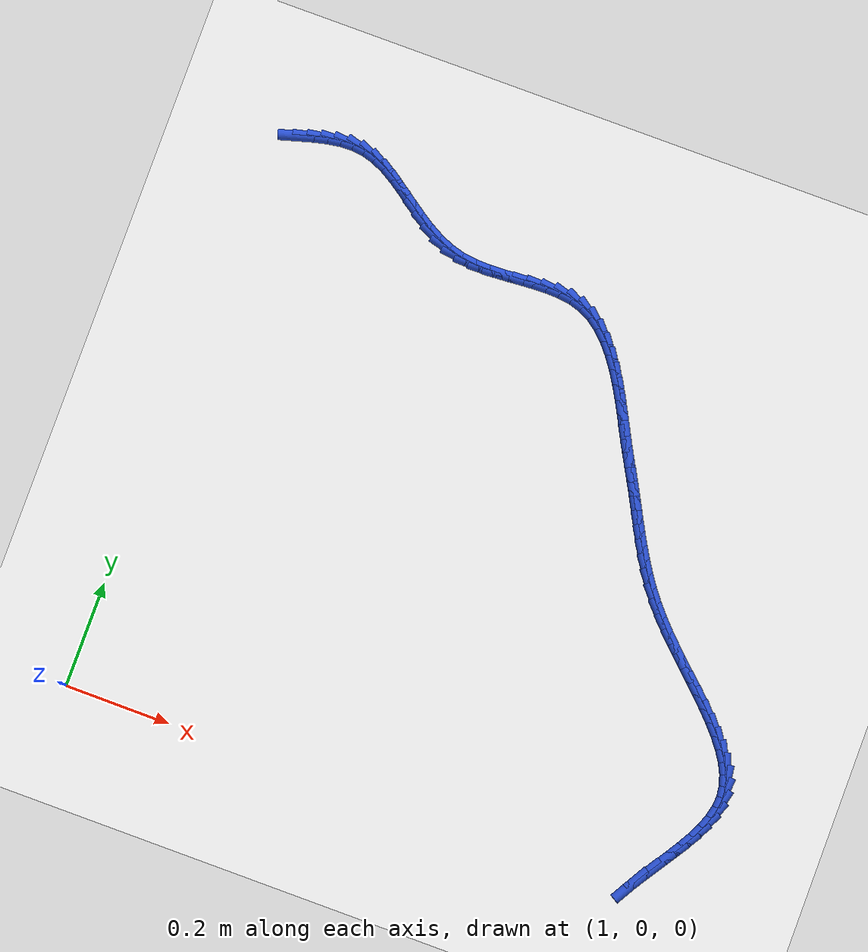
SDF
<sdf version="1.6">
 <world name="default">
  <model name="ground_plane">
   <static>1</static>
   <link name="link">
    <collision name="collision">
     <geometry><plane><normal>0 0 1</normal><size>100 100</size></plane></geometry>
     <surface><friction><ode><mu>100</mu><mu2>50</mu2></ode></friction></surface>
    </collision>
    <visual name="visual">
     <cast_shadows>0</cast_shadows>
     <geometry><plane><normal>0 0 1</normal><size>100 100</size></plane></geometry>
     <material>
      <script><uri>file://media/materials/scripts/gazebo.material</uri><name>Gazebo/WhiteGlow</name></script>
     </material>
    </visual>
   </link>
  </model>
  <model name="line">
   <link name="link_65">
    <pose>1.0493771125271925 1.097898541382541 0.01 0 1.57 0.2775353731377268</pose>
    <collision name="collision">
     <geometry><cylinder><radius>0.01</radius><length>0.08</length></cylinder></geometry>
    </collision>
    <visual name="visual">
     <material>
      <script><name>Gazebo/Blue</name><uri>file://media/materials/scripts/gazebo.material</uri></script>
     </material>
     <geometry><cylinder><radius>0.01</radius><length>0.08</length></cylinder></geometry>
    </visual>
   </link>
   <link name="link_66">
    <pose>1.075320546081236 1.105289508819345 0.01 0 1.57 0.2269328008418897</pose>
    <collision name="collision">
     <geometry><cylinder><radius>0.01</radius><length>0.08</length></cylinder></geometry>
    </collision>
    <visual name="visual">
     <material>
      <script><name>Gazebo/Blue</name><uri>file://media/materials/scripts/gazebo.material</uri></script>
     </material>
     <geometry><cylinder><radius>0.01</radius><length>0.08</length></cylinder></geometry>
    </visual>
   </link>
   <link name="link_67">
    <pose>1.1006045718138247 1.1111278513300695 0.01 0 1.57 0.1471510101023588</pose>
    <collision name="collision">
     <geometry><cylinder><radius>0.01</radius><length>0.08</length></cylinder></geometry>
    </collision>
    <visual name="visual">
     <material>
      <script><name>Gazebo/Blue</name><uri>file://media/materials/scripts/gazebo.material</uri></script>
     </material>
     <geometry><cylinder><radius>0.01</radius><length>0.08</length></cylinder></geometry>
    </visual>
   </link>
   <link name="link_68">
    <pose>1.1252671494787498 1.1147833977392805 0.01 0 1.57 0.034977879502217556</pose>
    <collision name="collision">
     <geometry><cylinder><radius>0.01</radius><length>0.08</length></cylinder></geometry>
    </collision>
    <visual name="visual">
     <material>
      <script><name>Gazebo/Blue</name><uri>file://media/materials/scripts/gazebo.material</uri></script>
     </material>
     <geometry><cylinder><radius>0.01</radius><length>0.08</length></cylinder></geometry>
    </visual>
   </link>
   <link name="link_69">
    <pose>1.1493462388298028 1.1156259768715449 0.01 0 1.57 -0.11005775600568005</pose>
    <collision name="collision">
     <geometry><cylinder><radius>0.01</radius><length>0.08</length></cylinder></geometry>
    </collision>
    <visual name="visual">
     <material>
      <script><name>Gazebo/Blue</name><uri>file://media/materials/scripts/gazebo.material</uri></script>
     </material>
     <geometry><cylinder><radius>0.01</radius><length>0.08</length></cylinder></geometry>
    </visual>
   </link>
   <link name="link_70">
    <pose>1.1728797996207747 1.1130254175514291 0.01 0 1.57 -0.27997357270882256</pose>
    <collision name="collision">
     <geometry><cylinder><radius>0.01</radius><length>0.08</length></cylinder></geometry>
    </collision>
    <visual name="visual">
     <material>
      <script><name>Gazebo/Blue</name><uri>file://media/materials/scripts/gazebo.material</uri></script>
     </material>
     <geometry><cylinder><radius>0.01</radius><length>0.08</length></cylinder></geometry>
    </visual>
   </link>
   <link name="link_71">
    <pose>1.1959105733230002 1.1064034779111185 0.01 0 1.57 -0.4302138245966116</pose>
    <collision name="collision">
     <geometry><cylinder><radius>0.01</radius><length>0.08</length></cylinder></geometry>
    </collision>
    <visual name="visual">
     <material>
      <script><name>Gazebo/Blue</name><uri>file://media/materials/scripts/gazebo.material</uri></script>
     </material>
     <geometry><cylinder><radius>0.01</radius><length>0.08</length></cylinder></geometry>
    </visual>
   </link>
   <link name="link_72">
    <pose>1.218557661602768 1.096011185486182 0.01 0 1.57 -0.5331513210577749</pose>
    <collision name="collision">
     <geometry><cylinder><radius>0.01</radius><length>0.08</length></cylinder></geometry>
    </collision>
    <visual name="visual">
     <material>
      <script><name>Gazebo/Blue</name><uri>file://media/materials/scripts/gazebo.material</uri></script>
     </material>
     <geometry><cylinder><radius>0.01</radius><length>0.08</length></cylinder></geometry>
    </visual>
   </link>
   <link name="link_73">
    <pose>1.2410015106871914 1.0827657678838842 0.01 0 1.57 -0.5945797289183539</pose>
    <collision name="collision">
     <geometry><cylinder><radius>0.01</radius><length>0.08</length></cylinder></geometry>
    </collision>
    <visual name="visual">
     <material>
      <script><name>Gazebo/Blue</name><uri>file://media/materials/scripts/gazebo.material</uri></script>
     </material>
     <geometry><cylinder><radius>0.01</radius><length>0.08</length></cylinder></geometry>
    </visual>
   </link>
   <link name="link_74">
    <pose>1.2634243001894285 1.0676032772314312 0.01 0 1.57 -0.620605564729072</pose>
    <collision name="collision">
     <geometry><cylinder><radius>0.01</radius><length>0.08</length></cylinder></geometry>
    </collision>
    <visual name="visual">
     <material>
      <script><name>Gazebo/Blue</name><uri>file://media/materials/scripts/gazebo.material</uri></script>
     </material>
     <geometry><cylinder><radius>0.01</radius><length>0.08</length></cylinder></geometry>
    </visual>
   </link>
   <link name="link_75">
    <pose>1.2860082097226389 1.0514597656560314 0.01 0 1.57 -0.6147959192971442</pose>
    <collision name="collision">
     <geometry><cylinder><radius>0.01</radius><length>0.08</length></cylinder></geometry>
    </collision>
    <visual name="visual">
     <material>
      <script><name>Gazebo/Blue</name><uri>file://media/materials/scripts/gazebo.material</uri></script>
     </material>
     <geometry><cylinder><radius>0.01</radius><length>0.08</length></cylinder></geometry>
    </visual>
   </link>
   <link name="link_76">
    <pose>1.308935418899981 1.0352712852848913 0.01 0 1.57 -0.5779667141186224</pose>
    <collision name="collision">
     <geometry><cylinder><radius>0.01</radius><length>0.08</length></cylinder></geometry>
    </collision>
    <visual name="visual">
     <material>
      <script><name>Gazebo/Blue</name><uri>file://media/materials/scripts/gazebo.material</uri></script>
     </material>
     <geometry><cylinder><radius>0.01</radius><length>0.08</length></cylinder></geometry>
    </visual>
   </link>
   <link name="link_77">
    <pose>1.3323881073346138 1.019973888245218 0.01 0 1.57 -0.5086105331560083</pose>
    <collision name="collision">
     <geometry><cylinder><radius>0.01</radius><length>0.08</length></cylinder></geometry>
    </collision>
    <visual name="visual">
     <material>
      <script><name>Gazebo/Blue</name><uri>file://media/materials/scripts/gazebo.material</uri></script>
     </material>
     <geometry><cylinder><radius>0.01</radius><length>0.08</length></cylinder></geometry>
    </visual>
   </link>
   <link name="link_78">
    <pose>1.3565484546396964 1.006503626664219 0.01 0 1.57 -0.4039227936931797</pose>
    <collision name="collision">
     <geometry><cylinder><radius>0.01</radius><length>0.08</length></cylinder></geometry>
    </collision>
    <visual name="visual">
     <material>
      <script><name>Gazebo/Blue</name><uri>file://media/materials/scripts/gazebo.material</uri></script>
     </material>
     <geometry><cylinder><radius>0.01</radius><length>0.08</length></cylinder></geometry>
    </visual>
   </link>
   <link name="link_79">
    <pose>1.3815986404283878 0.9957965526691019 0.01 0 1.57 -0.26442928315448877</pose>
    <collision name="collision">
     <geometry><cylinder><radius>0.01</radius><length>0.08</length></cylinder></geometry>
    </collision>
    <visual name="visual">
     <material>
      <script><name>Gazebo/Blue</name><uri>file://media/materials/scripts/gazebo.material</uri></script>
     </material>
     <geometry><cylinder><radius>0.01</radius><length>0.08</length></cylinder></geometry>
    </visual>
   </link>
   <link name="link_80">
    <pose>1.407704253547178 0.9887279384162144 0.01 0 1.57 -0.12939909151889062</pose>
    <collision name="collision">
     <geometry><cylinder><radius>0.01</radius><length>0.08</length></cylinder></geometry>
    </collision>
    <visual name="visual">
     <material>
      <script><name>Gazebo/Blue</name><uri>file://media/materials/scripts/gazebo.material</uri></script>
     </material>
     <geometry><cylinder><radius>0.01</radius><length>0.08</length></cylinder></geometry>
    </visual>
   </link>
   <link name="link_81">
    <pose>1.43476701063288 0.98520636503817 0.01 0 1.57 -0.030323236224047437</pose>
    <collision name="collision">
     <geometry><cylinder><radius>0.01</radius><length>0.08</length></cylinder></geometry>
    </collision>
    <visual name="visual">
     <material>
      <script><name>Gazebo/Blue</name><uri>file://media/materials/scripts/gazebo.material</uri></script>
     </material>
     <geometry><cylinder><radius>0.01</radius><length>0.08</length></cylinder></geometry>
    </visual>
   </link>
   <link name="link_82">
    <pose>1.4624771986239995 0.9843658448270413 0.01 0 1.57 0.03396394064905525</pose>
    <collision name="collision">
     <geometry><cylinder><radius>0.01</radius><length>0.08</length></cylinder></geometry>
    </collision>
    <visual name="visual">
     <material>
      <script><name>Gazebo/Blue</name><uri>file://media/materials/scripts/gazebo.material</uri></script>
     </material>
     <geometry><cylinder><radius>0.01</radius><length>0.08</length></cylinder></geometry>
    </visual>
   </link>
   <link name="link_83">
    <pose>1.4905191638764683 0.9853186268590738 0.01 0 1.57 0.06613505344259576</pose>
    <collision name="collision">
     <geometry><cylinder><radius>0.01</radius><length>0.08</length></cylinder></geometry>
    </collision>
    <visual name="visual">
     <material>
      <script><name>Gazebo/Blue</name><uri>file://media/materials/scripts/gazebo.material</uri></script>
     </material>
     <geometry><cylinder><radius>0.01</radius><length>0.08</length></cylinder></geometry>
    </visual>
   </link>
   <link name="link_84">
    <pose>1.518577252746221 0.9871769602105155 0.01 0 1.57 0.0674849434901481</pose>
    <collision name="collision">
     <geometry><cylinder><radius>0.01</radius><length>0.08</length></cylinder></geometry>
    </collision>
    <visual name="visual">
     <material>
      <script><name>Gazebo/Blue</name><uri>file://media/materials/scripts/gazebo.material</uri></script>
     </material>
     <geometry><cylinder><radius>0.01</radius><length>0.08</length></cylinder></geometry>
    </visual>
   </link>
   <link name="link_85">
    <pose>1.5463358115891888 0.989053093957612 0.01 0 1.57 0.037052235330977436</pose>
    <collision name="collision">
     <geometry><cylinder><radius>0.01</radius><length>0.08</length></cylinder></geometry>
    </collision>
    <visual name="visual">
     <material>
      <script><name>Gazebo/Blue</name><uri>file://media/materials/scripts/gazebo.material</uri></script>
     </material>
     <geometry><cylinder><radius>0.01</radius><length>0.08</length></cylinder></geometry>
    </visual>
   </link>
   <link name="link_86">
    <pose>1.573479186761305 0.9900592771766102 0.01 0 1.57 -0.02866233050834766</pose>
    <collision name="collision">
     <geometry><cylinder><radius>0.01</radius><length>0.08</length></cylinder></geometry>
    </collision>
    <visual name="visual">
     <material>
      <script><name>Gazebo/Blue</name><uri>file://media/materials/scripts/gazebo.material</uri></script>
     </material>
     <geometry><cylinder><radius>0.01</radius><length>0.08</length></cylinder></geometry>
    </visual>
   </link>
   <link name="link_87">
    <pose>1.5996917246185023 0.9893077589437574 0.01 0 1.57 -0.13523315846179806</pose>
    <collision name="collision">
     <geometry><cylinder><radius>0.01</radius><length>0.08</length></cylinder></geometry>
    </collision>
    <visual name="visual">
     <material>
      <script><name>Gazebo/Blue</name><uri>file://media/materials/scripts/gazebo.material</uri></script>
     </material>
     <geometry><cylinder><radius>0.01</radius><length>0.08</length></cylinder></geometry>
    </visual>
   </link>
   <link name="link_88">
    <pose>1.624657771516713 0.9859107883352992 0.01 0 1.57 -0.2878669561494022</pose>
    <collision name="collision">
     <geometry><cylinder><radius>0.01</radius><length>0.08</length></cylinder></geometry>
    </collision>
    <visual name="visual">
     <material>
      <script><name>Gazebo/Blue</name><uri>file://media/materials/scripts/gazebo.material</uri></script>
     </material>
     <geometry><cylinder><radius>0.01</radius><length>0.08</length></cylinder></geometry>
    </visual>
   </link>
   <link name="link_89">
    <pose>1.6480618248279584 0.9789810524919115 0.01 0 1.57 -0.4708287167649854</pose>
    <collision name="collision">
     <geometry><cylinder><radius>0.01</radius><length>0.08</length></cylinder></geometry>
    </collision>
    <visual name="visual">
     <material>
      <script><name>Gazebo/Blue</name><uri>file://media/materials/scripts/gazebo.material</uri></script>
     </material>
     <geometry><cylinder><radius>0.01</radius><length>0.08</length></cylinder></geometry>
    </visual>
   </link>
   <link name="link_90">
    <pose>1.6697035225113004 0.9679652360531033 0.01 0 1.57 -0.6347008481589415</pose>
    <collision name="collision">
     <geometry><cylinder><radius>0.01</radius><length>0.08</length></cylinder></geometry>
    </collision>
    <visual name="visual">
     <material>
      <script><name>Gazebo/Blue</name><uri>file://media/materials/scripts/gazebo.material</uri></script>
     </material>
     <geometry><cylinder><radius>0.01</radius><length>0.08</length></cylinder></geometry>
    </visual>
   </link>
   <link name="link_91">
    <pose>1.68970275707687 0.9532390116181761 0.01 0 1.57 -0.7680757467953654</pose>
    <collision name="collision">
     <geometry><cylinder><radius>0.01</radius><length>0.08</length></cylinder></geometry>
    </collision>
    <visual name="visual">
     <material>
      <script><name>Gazebo/Blue</name><uri>file://media/materials/scripts/gazebo.material</uri></script>
     </material>
     <geometry><cylinder><radius>0.01</radius><length>0.08</length></cylinder></geometry>
    </visual>
   </link>
   <link name="link_92">
    <pose>1.7082346562117885 0.9353382768767866 0.01 0 1.57 -0.8725180019685614</pose>
    <collision name="collision">
     <geometry><cylinder><radius>0.01</radius><length>0.08</length></cylinder></geometry>
    </collision>
    <visual name="visual">
     <material>
      <script><name>Gazebo/Blue</name><uri>file://media/materials/scripts/gazebo.material</uri></script>
     </material>
     <geometry><cylinder><radius>0.01</radius><length>0.08</length></cylinder></geometry>
    </visual>
   </link>
   <link name="link_93">
    <pose>1.725474347603176 0.9147989295185921 0.01 0 1.57 -0.9520191151585166</pose>
    <collision name="collision">
     <geometry><cylinder><radius>0.01</radius><length>0.08</length></cylinder></geometry>
    </collision>
    <visual name="visual">
     <material>
      <script><name>Gazebo/Blue</name><uri>file://media/materials/scripts/gazebo.material</uri></script>
     </material>
     <geometry><cylinder><radius>0.01</radius><length>0.08</length></cylinder></geometry>
    </visual>
   </link>
   <link name="link_94">
    <pose>1.7415969589381548 0.8921568672332503 0.01 0 1.57 -1.0107099491840401</pose>
    <collision name="collision">
     <geometry><cylinder><radius>0.01</radius><length>0.08</length></cylinder></geometry>
    </collision>
    <visual name="visual">
     <material>
      <script><name>Gazebo/Blue</name><uri>file://media/materials/scripts/gazebo.material</uri></script>
     </material>
     <geometry><cylinder><radius>0.01</radius><length>0.08</length></cylinder></geometry>
    </visual>
   </link>
   <link name="link_95">
    <pose>1.756777617903846 0.8679479877104184 0.01 0 1.57 -1.0519163127087237</pose>
    <collision name="collision">
     <geometry><cylinder><radius>0.01</radius><length>0.08</length></cylinder></geometry>
    </collision>
    <visual name="visual">
     <material>
      <script><name>Gazebo/Blue</name><uri>file://media/materials/scripts/gazebo.material</uri></script>
     </material>
     <geometry><cylinder><radius>0.01</radius><length>0.08</length></cylinder></geometry>
    </visual>
   </link>
   <link name="link_96">
    <pose>1.7711914521873704 0.8427081886397536 0.01 0 1.57 -1.0779121188129221</pose>
    <collision name="collision">
     <geometry><cylinder><radius>0.01</radius><length>0.08</length></cylinder></geometry>
    </collision>
    <visual name="visual">
     <material>
      <script><name>Gazebo/Blue</name><uri>file://media/materials/scripts/gazebo.material</uri></script>
     </material>
     <geometry><cylinder><radius>0.01</radius><length>0.08</length></cylinder></geometry>
    </visual>
   </link>
   <link name="link_97">
    <pose>1.7850135894758492 0.8169733677109132 0.01 0 1.57 -1.0899080857616035</pose>
    <collision name="collision">
     <geometry><cylinder><radius>0.01</radius><length>0.08</length></cylinder></geometry>
    </collision>
    <visual name="visual">
     <material>
      <script><name>Gazebo/Blue</name><uri>file://media/materials/scripts/gazebo.material</uri></script>
     </material>
     <geometry><cylinder><radius>0.01</radius><length>0.08</length></cylinder></geometry>
    </visual>
   </link>
   <link name="link_98">
    <pose>1.7984191574564037 0.7912794226135547 0.01 0 1.57 -1.0880483535124839</pose>
    <collision name="collision">
     <geometry><cylinder><radius>0.01</radius><length>0.08</length></cylinder></geometry>
    </collision>
    <visual name="visual">
     <material>
      <script><name>Gazebo/Blue</name><uri>file://media/materials/scripts/gazebo.material</uri></script>
     </material>
     <geometry><cylinder><radius>0.01</radius><length>0.08</length></cylinder></geometry>
    </visual>
   </link>
   <link name="link_99">
    <pose>1.811583283816155 0.766162251037335 0.01 0 1.57 -1.0749198308558985</pose>
    <collision name="collision">
     <geometry><cylinder><radius>0.01</radius><length>0.08</length></cylinder></geometry>
    </collision>
    <visual name="visual">
     <material>
      <script><name>Gazebo/Blue</name><uri>file://media/materials/scripts/gazebo.material</uri></script>
     </material>
     <geometry><cylinder><radius>0.01</radius><length>0.08</length></cylinder></geometry>
    </visual>
   </link>
   <link name="link_100">
    <pose>1.8246422419828132 0.7420219267133336 0.01 0 1.57 -1.0663559826689037</pose>
    <collision name="collision">
     <geometry><cylinder><radius>0.01</radius><length>0.08</length></cylinder></geometry>
    </collision>
    <visual name="visual">
     <material>
      <script><name>Gazebo/Blue</name><uri>file://media/materials/scripts/gazebo.material</uri></script>
     </material>
     <geometry><cylinder><radius>0.01</radius><length>0.08</length></cylinder></geometry>
    </visual>
   </link>
   <link name="link_101">
    <pose>1.837553872427902 0.7186347701260694 0.01 0 1.57 -1.0679259141596325</pose>
    <collision name="collision">
     <geometry><cylinder><radius>0.01</radius><length>0.08</length></cylinder></geometry>
    </collision>
    <visual name="visual">
     <material>
      <script><name>Gazebo/Blue</name><uri>file://media/materials/scripts/gazebo.material</uri></script>
     </material>
     <geometry><cylinder><radius>0.01</radius><length>0.08</length></cylinder></geometry>
    </visual>
   </link>
   <link name="link_102">
    <pose>1.8502248260030556 0.6955981567250298 0.01 0 1.57 -1.0780683839652003</pose>
    <collision name="collision">
     <geometry><cylinder><radius>0.01</radius><length>0.08</length></cylinder></geometry>
    </collision>
    <visual name="visual">
     <material>
      <script><name>Gazebo/Blue</name><uri>file://media/materials/scripts/gazebo.material</uri></script>
     </material>
     <geometry><cylinder><radius>0.01</radius><length>0.08</length></cylinder></geometry>
    </visual>
   </link>
   <link name="link_103">
    <pose>1.8625967214432089 0.6725548388196292 0.01 0 1.57 -1.0835950070284985</pose>
    <collision name="collision">
     <geometry><cylinder><radius>0.01</radius><length>0.08</length></cylinder></geometry>
    </collision>
    <visual name="visual">
     <material>
      <script><name>Gazebo/Blue</name><uri>file://media/materials/scripts/gazebo.material</uri></script>
     </material>
     <geometry><cylinder><radius>0.01</radius><length>0.08</length></cylinder></geometry>
    </visual>
   </link>
   <link name="link_104">
    <pose>1.8748403023125733 0.649444960335306 0.01 0 1.57 -1.0791763195324486</pose>
    <collision name="collision">
     <geometry><cylinder><radius>0.01</radius><length>0.08</length></cylinder></geometry>
    </collision>
    <visual name="visual">
     <material>
      <script><name>Gazebo/Blue</name><uri>file://media/materials/scripts/gazebo.material</uri></script>
     </material>
     <geometry><cylinder><radius>0.01</radius><length>0.08</length></cylinder></geometry>
    </visual>
   </link>
   <link name="link_105">
    <pose>1.8872185527501366 0.62632838846661 0.01 0 1.57 -1.0649132934426055</pose>
    <collision name="collision">
     <geometry><cylinder><radius>0.01</radius><length>0.08</length></cylinder></geometry>
    </collision>
    <visual name="visual">
     <material>
      <script><name>Gazebo/Blue</name><uri>file://media/materials/scripts/gazebo.material</uri></script>
     </material>
     <geometry><cylinder><radius>0.01</radius><length>0.08</length></cylinder></geometry>
    </visual>
   </link>
   <link name="link_106">
    <pose>1.8999947096520977 0.6032653184732579 0.01 0 1.57 -1.0410924649624778</pose>
    <collision name="collision">
     <geometry><cylinder><radius>0.01</radius><length>0.08</length></cylinder></geometry>
    </collision>
    <visual name="visual">
     <material>
      <script><name>Gazebo/Blue</name><uri>file://media/materials/scripts/gazebo.material</uri></script>
     </material>
     <geometry><cylinder><radius>0.01</radius><length>0.08</length></cylinder></geometry>
    </visual>
   </link>
   <link name="link_107">
    <pose>1.9134320099146542 0.5803159456149662 0.01 0 1.57 -1.0081970609243478</pose>
    <collision name="collision">
     <geometry><cylinder><radius>0.01</radius><length>0.08</length></cylinder></geometry>
    </collision>
    <visual name="visual">
     <material>
      <script><name>Gazebo/Blue</name><uri>file://media/materials/scripts/gazebo.material</uri></script>
     </material>
     <geometry><cylinder><radius>0.01</radius><length>0.08</length></cylinder></geometry>
    </visual>
   </link>
   <link name="link_108">
    <pose>1.9277936904340047 0.5575404651514514 0.01 0 1.57 -0.9669414914198663</pose>
    <collision name="collision">
     <geometry><cylinder><radius>0.01</radius><length>0.08</length></cylinder></geometry>
    </collision>
    <visual name="visual">
     <material>
      <script><name>Gazebo/Blue</name><uri>file://media/materials/scripts/gazebo.material</uri></script>
     </material>
     <geometry><cylinder><radius>0.01</radius><length>0.08</length></cylinder></geometry>
    </visual>
   </link>
   <link name="link_109">
    <pose>1.9433429881063478 0.5349990723424302 0.01 0 1.57 -0.9182999099181829</pose>
    <collision name="collision">
     <geometry><cylinder><radius>0.01</radius><length>0.08</length></cylinder></geometry>
    </collision>
    <visual name="visual">
     <material>
      <script><name>Gazebo/Blue</name><uri>file://media/materials/scripts/gazebo.material</uri></script>
     </material>
     <geometry><cylinder><radius>0.01</radius><length>0.08</length></cylinder></geometry>
    </visual>
   </link>
   <link name="link_110">
    <pose>1.9603431398278826 0.5127519624476191 0.01 0 1.57 -0.864269392567532</pose>
    <collision name="collision">
     <geometry><cylinder><radius>0.01</radius><length>0.08</length></cylinder></geometry>
    </collision>
    <visual name="visual">
     <material>
      <script><name>Gazebo/Blue</name><uri>file://media/materials/scripts/gazebo.material</uri></script>
     </material>
     <geometry><cylinder><radius>0.01</radius><length>0.08</length></cylinder></geometry>
    </visual>
   </link>
   <link name="link_111">
    <pose>1.979031895303915 0.4908555509488476 0.01 0 1.57 -0.8170169454612469</pose>
    <collision name="collision">
     <geometry><cylinder><radius>0.01</radius><length>0.08</length></cylinder></geometry>
    </collision>
    <visual name="visual">
     <material>
      <script><name>Gazebo/Blue</name><uri>file://media/materials/scripts/gazebo.material</uri></script>
     </material>
     <geometry><cylinder><radius>0.01</radius><length>0.08</length></cylinder></geometry>
    </visual>
   </link>
   <link name="link_112">
    <pose>1.9992576835050206 0.4693085166432538 0.01 0 1.57 -0.7839083877601539</pose>
    <collision name="collision">
     <geometry><cylinder><radius>0.01</radius><length>0.08</length></cylinder></geometry>
    </collision>
    <visual name="visual">
     <material>
      <script><name>Gazebo/Blue</name><uri>file://media/materials/scripts/gazebo.material</uri></script>
     </material>
     <geometry><cylinder><radius>0.01</radius><length>0.08</length></cylinder></geometry>
    </visual>
   </link>
   <link name="link_113">
    <pose>2.0205651111655065 0.44806448116278474 0.01 0 1.57 -0.7635672249386829</pose>
    <collision name="collision">
     <geometry><cylinder><radius>0.01</radius><length>0.08</length></cylinder></geometry>
    </collision>
    <visual name="visual">
     <material>
      <script><name>Gazebo/Blue</name><uri>file://media/materials/scripts/gazebo.material</uri></script>
     </material>
     <geometry><cylinder><radius>0.01</radius><length>0.08</length></cylinder></geometry>
    </visual>
   </link>
   <link name="link_114">
    <pose>2.042490727784807 0.42707587124276764 0.01 0 1.57 -0.7550863184589747</pose>
    <collision name="collision">
     <geometry><cylinder><radius>0.01</radius><length>0.08</length></cylinder></geometry>
    </collision>
    <visual name="visual">
     <material>
      <script><name>Gazebo/Blue</name><uri>file://media/materials/scripts/gazebo.material</uri></script>
     </material>
     <geometry><cylinder><radius>0.01</radius><length>0.08</length></cylinder></geometry>
    </visual>
   </link>
   <link name="link_115">
    <pose>2.0645710828623547 0.4062951136185309 0.01 0 1.57 -0.7582496847189863</pose>
    <collision name="collision">
     <geometry><cylinder><radius>0.01</radius><length>0.08</length></cylinder></geometry>
    </collision>
    <visual name="visual">
     <material>
      <script><name>Gazebo/Blue</name><uri>file://media/materials/scripts/gazebo.material</uri></script>
     </material>
     <geometry><cylinder><radius>0.01</radius><length>0.08</length></cylinder></geometry>
    </visual>
   </link>
   <link name="link_116">
    <pose>2.0863427258975826 0.38567463502540233 0.01 0 1.57 -0.7735524104987385</pose>
    <collision name="collision">
     <geometry><cylinder><radius>0.01</radius><length>0.08</length></cylinder></geometry>
    </collision>
    <visual name="visual">
     <material>
      <script><name>Gazebo/Blue</name><uri>file://media/materials/scripts/gazebo.material</uri></script>
     </material>
     <geometry><cylinder><radius>0.01</radius><length>0.08</length></cylinder></geometry>
    </visual>
   </link>
   <link name="link_117">
    <pose>2.1073422063899234 0.3651668621987098 0.01 0 1.57 -0.8022787242700684</pose>
    <collision name="collision">
     <geometry><cylinder><radius>0.01</radius><length>0.08</length></cylinder></geometry>
    </collision>
    <visual name="visual">
     <material>
      <script><name>Gazebo/Blue</name><uri>file://media/materials/scripts/gazebo.material</uri></script>
     </material>
     <geometry><cylinder><radius>0.01</radius><length>0.08</length></cylinder></geometry>
    </visual>
   </link>
   <link name="link_118">
    <pose>2.1271060738388106 0.3447242218737815 0.01 0 1.57 -0.8466434833153232</pose>
    <collision name="collision">
     <geometry><cylinder><radius>0.01</radius><length>0.08</length></cylinder></geometry>
    </collision>
    <visual name="visual">
     <material>
      <script><name>Gazebo/Blue</name><uri>file://media/materials/scripts/gazebo.material</uri></script>
     </material>
     <geometry><cylinder><radius>0.01</radius><length>0.08</length></cylinder></geometry>
    </visual>
   </link>
   <link name="link_119">
    <pose>2.145170877743677 0.324299140785945 0.01 0 1.57 -0.9099733828831433</pose>
    <collision name="collision">
     <geometry><cylinder><radius>0.01</radius><length>0.08</length></cylinder></geometry>
    </collision>
    <visual name="visual">
     <material>
      <script><name>Gazebo/Blue</name><uri>file://media/materials/scripts/gazebo.material</uri></script>
     </material>
     <geometry><cylinder><radius>0.01</radius><length>0.08</length></cylinder></geometry>
    </visual>
   </link>
   <link name="link_120">
    <pose>2.1610731676039565 0.3038440456705287 0.01 0 1.57 -0.9968186582008496</pose>
    <collision name="collision">
     <geometry><cylinder><radius>0.01</radius><length>0.08</length></cylinder></geometry>
    </collision>
    <visual name="visual">
     <material>
      <script><name>Gazebo/Blue</name><uri>file://media/materials/scripts/gazebo.material</uri></script>
     </material>
     <geometry><cylinder><radius>0.01</radius><length>0.08</length></cylinder></geometry>
    </visual>
   </link>
   <link name="link_121">
    <pose>2.1743494929190805 0.2833113632628602 0.01 0 1.57 -1.1126633824432546</pose>
    <collision name="collision">
     <geometry><cylinder><radius>0.01</radius><length>0.08</length></cylinder></geometry>
    </collision>
    <visual name="visual">
     <material>
      <script><name>Gazebo/Blue</name><uri>file://media/materials/scripts/gazebo.material</uri></script>
     </material>
     <geometry><cylinder><radius>0.01</radius><length>0.08</length></cylinder></geometry>
    </visual>
   </link>
   <link name="link_122">
    <pose>2.184536403188483 0.2626535202982676 0.01 0 1.57 -1.2624761721625715</pose>
    <collision name="collision">
     <geometry><cylinder><radius>0.01</radius><length>0.08</length></cylinder></geometry>
    </collision>
    <visual name="visual">
     <material>
      <script><name>Gazebo/Blue</name><uri>file://media/materials/scripts/gazebo.material</uri></script>
     </material>
     <geometry><cylinder><radius>0.01</radius><length>0.08</length></cylinder></geometry>
    </visual>
   </link>
   <link name="link_123">
    <pose>2.191170447911597 0.24182294351207897 0.01 0 1.57 -1.4470410759559247</pose>
    <collision name="collision">
     <geometry><cylinder><radius>0.01</radius><length>0.08</length></cylinder></geometry>
    </collision>
    <visual name="visual">
     <material>
      <script><name>Gazebo/Blue</name><uri>file://media/materials/scripts/gazebo.material</uri></script>
     </material>
     <geometry><cylinder><radius>0.01</radius><length>0.08</length></cylinder></geometry>
    </visual>
   </link>
   <link name="link_124">
    <pose>2.1937889861630193 0.2207720659858457 0.01 0 1.57 1.496360107408267</pose>
    <collision name="collision">
     <geometry><cylinder><radius>0.01</radius><length>0.08</length></cylinder></geometry>
    </collision>
    <visual name="visual">
     <material>
      <script><name>Gazebo/Blue</name><uri>file://media/materials/scripts/gazebo.material</uri></script>
     </material>
     <geometry><cylinder><radius>0.01</radius><length>0.08</length></cylinder></geometry>
    </visual>
   </link>
   <link name="link_125">
    <pose>2.1921993198148746 0.19945543687073827 0.01 0 1.57 1.3290768396500539</pose>
    <collision name="collision">
     <geometry><cylinder><radius>0.01</radius><length>0.08</length></cylinder></geometry>
    </collision>
    <visual name="visual">
     <material>
      <script><name>Gazebo/Blue</name><uri>file://media/materials/scripts/gazebo.material</uri></script>
     </material>
     <geometry><cylinder><radius>0.01</radius><length>0.08</length></cylinder></geometry>
    </visual>
   </link>
   <link name="link_126">
    <pose>2.18686847066853 0.17783277683319548 0.01 0 1.57 1.2013720794289362</pose>
    <collision name="collision">
     <geometry><cylinder><radius>0.01</radius><length>0.08</length></cylinder></geometry>
    </collision>
    <visual name="visual">
     <material>
      <script><name>Gazebo/Blue</name><uri>file://media/materials/scripts/gazebo.material</uri></script>
     </material>
     <geometry><cylinder><radius>0.01</radius><length>0.08</length></cylinder></geometry>
    </visual>
   </link>
   <link name="link_127">
    <pose>2.178362364878871 0.1558645818464971 0.01 0 1.57 1.1093407105641144</pose>
    <collision name="collision">
     <geometry><cylinder><radius>0.01</radius><length>0.08</length></cylinder></geometry>
    </collision>
    <visual name="visual">
     <material>
      <script><name>Gazebo/Blue</name><uri>file://media/materials/scripts/gazebo.material</uri></script>
     </material>
     <geometry><cylinder><radius>0.01</radius><length>0.08</length></cylinder></geometry>
    </visual>
   </link>
   <link name="link_128">
    <pose>2.167246928600783 0.13351134788392305 0.01 0 1.57 1.0469313803595788</pose>
    <collision name="collision">
     <geometry><cylinder><radius>0.01</radius><length>0.08</length></cylinder></geometry>
    </collision>
    <visual name="visual">
     <material>
      <script><name>Gazebo/Blue</name><uri>file://media/materials/scripts/gazebo.material</uri></script>
     </material>
     <geometry><cylinder><radius>0.01</radius><length>0.08</length></cylinder></geometry>
    </visual>
   </link>
   <link name="link_129">
    <pose>2.1540880879891513 0.11073357091875309 0.01 0 1.57 1.0087953445619622</pose>
    <collision name="collision">
     <geometry><cylinder><radius>0.01</radius><length>0.08</length></cylinder></geometry>
    </collision>
    <visual name="visual">
     <material>
      <script><name>Gazebo/Blue</name><uri>file://media/materials/scripts/gazebo.material</uri></script>
     </material>
     <geometry><cylinder><radius>0.01</radius><length>0.08</length></cylinder></geometry>
    </visual>
   </link>
   <link name="link_130">
    <pose>2.1394517691988626 0.08749174692426716 0.01 0 1.57 0.9910718709507057</pose>
    <collision name="collision">
     <geometry><cylinder><radius>0.01</radius><length>0.08</length></cylinder></geometry>
    </collision>
    <visual name="visual">
     <material>
      <script><name>Gazebo/Blue</name><uri>file://media/materials/scripts/gazebo.material</uri></script>
     </material>
     <geometry><cylinder><radius>0.01</radius><length>0.08</length></cylinder></geometry>
    </visual>
   </link>
   <link name="link_131">
    <pose>2.123903898384801 0.06374637187374506 0.01 0 1.57 0.9913587374664917</pose>
    <collision name="collision">
     <geometry><cylinder><radius>0.01</radius><length>0.08</length></cylinder></geometry>
    </collision>
    <visual name="visual">
     <material>
      <script><name>Gazebo/Blue</name><uri>file://media/materials/scripts/gazebo.material</uri></script>
     </material>
     <geometry><cylinder><radius>0.01</radius><length>0.08</length></cylinder></geometry>
    </visual>
   </link>
   <link name="link_132">
    <pose>2.108010401701852 0.03945794174046659 0.01 0 1.57 1.008480840320886</pose>
    <collision name="collision">
     <geometry><cylinder><radius>0.01</radius><length>0.08</length></cylinder></geometry>
    </collision>
    <visual name="visual">
     <material>
      <script><name>Gazebo/Blue</name><uri>file://media/materials/scripts/gazebo.material</uri></script>
     </material>
     <geometry><cylinder><radius>0.01</radius><length>0.08</length></cylinder></geometry>
    </visual>
   </link>
   <link name="link_133">
    <pose>2.0923372053049016 0.01458695249771164 0.01 0 1.57 1.042253063714506</pose>
    <collision name="collision">
     <geometry><cylinder><radius>0.01</radius><length>0.08</length></cylinder></geometry>
    </collision>
    <visual name="visual">
     <material>
      <script><name>Gazebo/Blue</name><uri>file://media/materials/scripts/gazebo.material</uri></script>
     </material>
     <geometry><cylinder><radius>0.01</radius><length>0.08</length></cylinder></geometry>
    </visual>
   </link>
  </model>
 </world>
</sdf>
